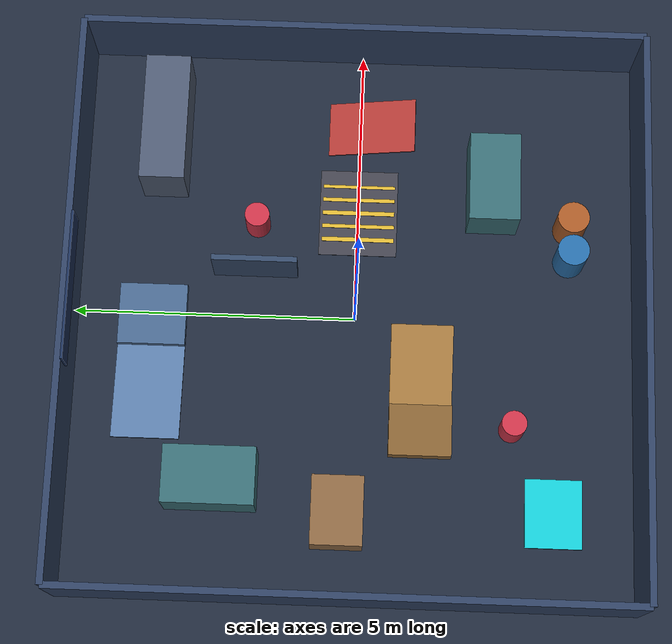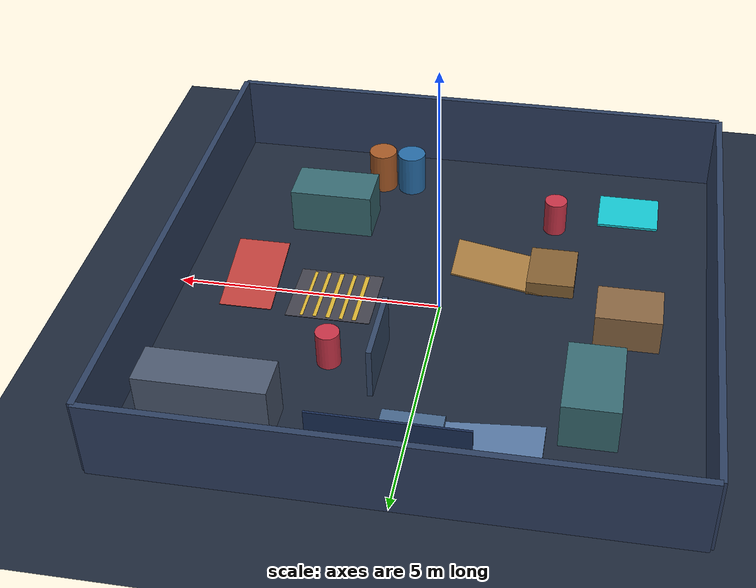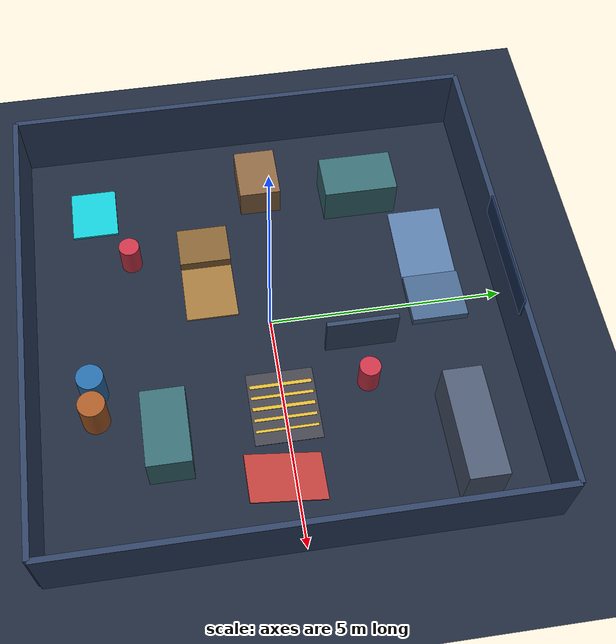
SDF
<sdf version="1.9">
 <world name="amr_lab">
  <plugin filename="gz-sim-physics-system" name="gz::sim::systems::Physics"/>
  <plugin filename="gz-sim-user-commands-system" name="gz::sim::systems::UserCommands"/>
  <plugin filename="gz-sim-scene-broadcaster-system" name="gz::sim::systems::SceneBroadcaster"/>
  <plugin filename="gz-sim-sensors-system" name="gz::sim::systems::Sensors">
   <render_engine>ogre2</render_engine>
  </plugin>
  <plugin filename="gz-sim-imu-system" name="gz::sim::systems::Imu"/>
  <gravity>0 0 -9.81</gravity>
  <physics name="accurate_omni_physics" type="ode">
   <max_step_size>0.001</max_step_size>
   <real_time_factor>1.0</real_time_factor>
   <real_time_update_rate>1000</real_time_update_rate>
  </physics>
  <scene>
   <ambient>0.28 0.32 0.40 1</ambient>
   <background>0.055 0.075 0.12 1</background>
   <shadows>true</shadows>
   <grid>false</grid>
  </scene>
  <light name="key_light" type="directional">
   <pose>4 -5 8 0.35 -0.55 0.45</pose>
   <direction>-0.35 0.45 -0.82</direction>
   <diffuse>0.92 0.95 1.0 1</diffuse>
   <specular>0.45 0.48 0.55 1</specular>
   <attenuation><range>30</range></attenuation>
  </light>
  <light name="fill_light" type="point">
   <pose>-3 2 4 0 0 0</pose>
   <diffuse>0.24 0.38 0.75 1</diffuse>
   <specular>0.10 0.16 0.35 1</specular>
   <attenuation><range>12</range><linear>0.08</linear><constant>0.7</constant></attenuation>
   <cast_shadows>false</cast_shadows>
  </light>
  <model name="lab_floor">
   <static>true</static>
   <link name="link">
    <collision name="collision">
     <geometry><plane><normal>0 0 1</normal><size>20 16</size></plane></geometry>
     <surface><friction><ode><mu>1.0</mu><mu2>1.0</mu2></ode></friction></surface>
    </collision>
    <visual name="visual">
     <geometry><plane><normal>0 0 1</normal><size>20 16</size></plane></geometry>
     <material>
      <ambient>0.08 0.11 0.17 1</ambient>
      <diffuse>0.12 0.16 0.23 1</diffuse>
      <specular>0.18 0.22 0.30 1</specular>
     </material>
    </visual>
   </link>
  </model>
  <model name="north_wall">
   <static>true</static>
   <pose>0 5 0.75 0 0 0</pose>
   <link name="link">
    <collision name="collision"><geometry><box><size>10 0.12 1.5</size></box></geometry></collision>
    <visual name="visual">
     <geometry><box><size>10 0.12 1.5</size></box></geometry>
     <material><ambient>0.12 0.16 0.25 1</ambient><diffuse>0.18 0.25 0.38 1</diffuse></material>
    </visual>
   </link>
  </model>
  <model name="south_wall">
   <static>true</static>
   <pose>0 -5 0.75 0 0 0</pose>
   <link name="link">
    <collision name="collision"><geometry><box><size>10 0.12 1.5</size></box></geometry></collision>
    <visual name="visual">
     <geometry><box><size>10 0.12 1.5</size></box></geometry>
     <material><ambient>0.12 0.16 0.25 1</ambient><diffuse>0.18 0.25 0.38 1</diffuse></material>
    </visual>
   </link>
  </model>
  <model name="east_wall">
   <static>true</static>
   <pose>5 0 0.75 0 0 0</pose>
   <link name="link">
    <collision name="collision"><geometry><box><size>0.12 10 1.5</size></box></geometry></collision>
    <visual name="visual">
     <geometry><box><size>0.12 10 1.5</size></box></geometry>
     <material><ambient>0.12 0.16 0.25 1</ambient><diffuse>0.18 0.25 0.38 1</diffuse></material>
    </visual>
   </link>
  </model>
  <model name="west_wall">
   <static>true</static>
   <pose>-5 0 0.75 0 0 0</pose>
   <link name="link">
    <collision name="collision"><geometry><box><size>0.12 10 1.5</size></box></geometry></collision>
    <visual name="visual">
     <geometry><box><size>0.12 10 1.5</size></box></geometry>
     <material><ambient>0.12 0.16 0.25 1</ambient><diffuse>0.18 0.25 0.38 1</diffuse></material>
    </visual>
   </link>
  </model>
  <model name="workbench">
   <static>true</static>
   <pose>3.35 3.5 0.55 0 0 0</pose>
   <link name="link">
    <collision name="collision"><geometry><box><size>2.3 0.8 1.1</size></box></geometry></collision>
    <visual name="visual">
     <geometry><box><size>2.3 0.8 1.1</size></box></geometry>
     <material><ambient>0.20 0.23 0.29 1</ambient><diffuse>0.30 0.35 0.44 1</diffuse></material>
    </visual>
   </link>
  </model>
  <model name="island_a">
   <static>true</static>
   <pose>-3.0 2.4 0.45 0 0 0</pose>
   <link name="link">
    <collision name="collision"><geometry><box><size>1.0 1.6 0.9</size></box></geometry></collision>
    <visual name="visual">
     <geometry><box><size>1.0 1.6 0.9</size></box></geometry>
     <material><ambient>0.16 0.25 0.28 1</ambient><diffuse>0.22 0.42 0.45 1</diffuse></material>
    </visual>
   </link>
  </model>
  <model name="island_b">
   <static>true</static>
   <pose>2.5 -2.4 0.45 0 0 0</pose>
   <link name="link">
    <collision name="collision"><geometry><box><size>1.6 0.9 0.9</size></box></geometry></collision>
    <visual name="visual">
     <geometry><box><size>1.6 0.9 0.9</size></box></geometry>
     <material><ambient>0.16 0.25 0.28 1</ambient><diffuse>0.22 0.42 0.45 1</diffuse></material>
    </visual>
   </link>
  </model>
  <model name="inspection_pillar_a">
   <static>true</static>
   <pose>-1.9 -2.8 0.35 0 0 0</pose>
   <link name="link">
    <collision name="collision">
     <geometry><cylinder><radius>0.22</radius><length>0.7</length></cylinder></geometry>
    </collision>
    <visual name="visual">
     <geometry><cylinder><radius>0.22</radius><length>0.7</length></cylinder></geometry>
     <material><ambient>0.48 0.12 0.18 1</ambient><diffuse>0.78 0.20 0.28 1</diffuse></material>
    </visual>
   </link>
  </model>
  <model name="inspection_pillar_b">
   <static>true</static>
   <pose>1.7 1.8 0.35 0 0 0</pose>
   <link name="link">
    <collision name="collision">
     <geometry><cylinder><radius>0.22</radius><length>0.7</length></cylinder></geometry>
    </collision>
    <visual name="visual">
     <geometry><cylinder><radius>0.22</radius><length>0.7</length></cylinder></geometry>
     <material><ambient>0.48 0.12 0.18 1</ambient><diffuse>0.78 0.20 0.28 1</diffuse></material>
    </visual>
   </link>
  </model>
  <model name="charging_pad">
   <static>true</static>
   <pose>-3.35 -3.55 0.025 0 0 0</pose>
   <link name="link">
    <collision name="collision"><geometry><box><size>1.2 1.0 0.05</size></box></geometry></collision>
    <visual name="visual">
     <geometry><box><size>1.2 1.0 0.05</size></box></geometry>
     <material>
      <ambient>0.05 0.45 0.52 1</ambient>
      <diffuse>0.08 0.78 0.82 1</diffuse>
      <specular>0.35 0.65 0.7 1</specular>
     </material>
    </visual>
   </link>
  </model>
  <model name="ramp_gentle_5deg">
   <static>true</static>
   <pose>-1.2 3.6 0.09 0 0.0873 0</pose>
   <link name="link">
    <collision name="collision">
     <geometry><box><size>2.2 1.2 0.03</size></box></geometry>
     <surface><friction><ode><mu>1.0</mu><mu2>1.0</mu2></ode></friction></surface>
    </collision>
    <visual name="visual">
     <geometry><box><size>2.2 1.2 0.03</size></box></geometry>
     <material><ambient>0.25 0.32 0.42 1</ambient><diffuse>0.35 0.48 0.65 1</diffuse></material>
    </visual>
   </link>
  </model>
  <model name="ramp_gentle_platform">
   <static>true</static>
   <pose>-0.05 3.6 0.09 0 0 0</pose>
   <link name="link">
    <collision name="collision">
     <geometry><box><size>1.1 1.2 0.18</size></box></geometry>
     <surface><friction><ode><mu>1.0</mu><mu2>1.0</mu2></ode></friction></surface>
    </collision>
    <visual name="visual">
     <geometry><box><size>1.1 1.2 0.18</size></box></geometry>
     <material><ambient>0.20 0.28 0.38 1</ambient><diffuse>0.28 0.40 0.55 1</diffuse></material>
    </visual>
   </link>
  </model>
  <model name="ramp_moderate_10deg">
   <static>true</static>
   <pose>-1.0 -1.2 0.14 0 -0.1745 0</pose>
   <link name="link">
    <collision name="collision">
     <geometry><box><size>1.8 1.1 0.03</size></box></geometry>
     <surface><friction><ode><mu>1.0</mu><mu2>1.0</mu2></ode></friction></surface>
    </collision>
    <visual name="visual">
     <geometry><box><size>1.8 1.1 0.03</size></box></geometry>
     <material><ambient>0.35 0.28 0.18 1</ambient><diffuse>0.65 0.48 0.25 1</diffuse></material>
    </visual>
   </link>
  </model>
  <model name="ramp_moderate_platform">
   <static>true</static>
   <pose>-2.0 -1.2 0.14 0 0 0</pose>
   <link name="link">
    <collision name="collision">
     <geometry><box><size>0.9 1.1 0.28</size></box></geometry>
     <surface><friction><ode><mu>1.0</mu><mu2>1.0</mu2></ode></friction></surface>
    </collision>
    <visual name="visual">
     <geometry><box><size>0.9 1.1 0.28</size></box></geometry>
     <material><ambient>0.30 0.22 0.14 1</ambient><diffuse>0.52 0.38 0.20 1</diffuse></material>
    </visual>
   </link>
  </model>
  <model name="ramp_steep_14deg">
   <static>true</static>
   <pose>3.6 -0.2 0.18 0 0.2443 1.5708</pose>
   <link name="link">
    <collision name="collision">
     <geometry><box><size>1.6 1.0 0.03</size></box></geometry>
     <surface><friction><ode><mu>1.0</mu><mu2>1.0</mu2></ode></friction></surface>
    </collision>
    <visual name="visual">
     <geometry><box><size>1.6 1.0 0.03</size></box></geometry>
     <material><ambient>0.42 0.15 0.15 1</ambient><diffuse>0.72 0.24 0.22 1</diffuse></material>
    </visual>
   </link>
  </model>
  <model name="rough_terrain_strip">
   <static>true</static>
   <pose>2.0 0.0 0.005 0 0 0</pose>
   <link name="strip_bed">
    <collision name="bed_col">
     <geometry><box><size>1.6 1.4 0.01</size></box></geometry>
     <surface><friction><ode><mu>0.9</mu><mu2>0.9</mu2></ode></friction></surface>
    </collision>
    <visual name="bed_vis">
     <geometry><box><size>1.6 1.4 0.01</size></box></geometry>
     <material><ambient>0.18 0.18 0.20 1</ambient><diffuse>0.26 0.26 0.30 1</diffuse></material>
    </visual>
   </link>
   <link name="ridge_1">
    <pose>-0.5 0 0.006 0 0 0</pose>
    <collision name="c"><geometry><box><size>0.08 1.3 0.012</size></box></geometry></collision>
    <visual name="v">
     <geometry><box><size>0.08 1.3 0.012</size></box></geometry>
     <material><ambient>0.45 0.38 0.15 1</ambient><diffuse>0.85 0.70 0.20 1</diffuse></material>
    </visual>
   </link>
   <link name="ridge_2">
    <pose>-0.25 0 0.005 0 0 0</pose>
    <collision name="c"><geometry><box><size>0.07 1.3 0.010</size></box></geometry></collision>
    <visual name="v">
     <geometry><box><size>0.07 1.3 0.010</size></box></geometry>
     <material><ambient>0.45 0.38 0.15 1</ambient><diffuse>0.85 0.70 0.20 1</diffuse></material>
    </visual>
   </link>
   <link name="ridge_3">
    <pose>0.0 0 0.006 0 0 0</pose>
    <collision name="c"><geometry><box><size>0.08 1.3 0.012</size></box></geometry></collision>
    <visual name="v">
     <geometry><box><size>0.08 1.3 0.012</size></box></geometry>
     <material><ambient>0.45 0.38 0.15 1</ambient><diffuse>0.85 0.70 0.20 1</diffuse></material>
    </visual>
   </link>
   <link name="ridge_4">
    <pose>0.25 0 0.005 0 0 0</pose>
    <collision name="c"><geometry><box><size>0.07 1.3 0.010</size></box></geometry></collision>
    <visual name="v">
     <geometry><box><size>0.07 1.3 0.010</size></box></geometry>
     <material><ambient>0.45 0.38 0.15 1</ambient><diffuse>0.85 0.70 0.20 1</diffuse></material>
    </visual>
   </link>
   <link name="ridge_5">
    <pose>0.5 0 0.004 0 0 0</pose>
    <collision name="c"><geometry><box><size>0.06 1.3 0.008</size></box></geometry></collision>
    <visual name="v">
     <geometry><box><size>0.06 1.3 0.008</size></box></geometry>
     <material><ambient>0.45 0.38 0.15 1</ambient><diffuse>0.85 0.70 0.20 1</diffuse></material>
    </visual>
   </link>
  </model>
  <model name="pallet_stack">
   <static>true</static>
   <pose>-3.5 0.2 0.35 0 0 0</pose>
   <link name="link">
    <collision name="collision"><geometry><box><size>1.2 0.9 0.7</size></box></geometry></collision>
    <visual name="visual">
     <geometry><box><size>1.2 0.9 0.7</size></box></geometry>
     <material><ambient>0.32 0.24 0.16 1</ambient><diffuse>0.54 0.40 0.26 1</diffuse></material>
    </visual>
   </link>
  </model>
  <model name="industrial_drum_a">
   <static>true</static>
   <pose>1.2 -3.8 0.42 0 0 0</pose>
   <link name="link">
    <collision name="collision">
     <geometry><cylinder><radius>0.28</radius><length>0.84</length></cylinder></geometry>
    </collision>
    <visual name="visual">
     <geometry><cylinder><radius>0.28</radius><length>0.84</length></cylinder></geometry>
     <material><ambient>0.10 0.22 0.35 1</ambient><diffuse>0.15 0.42 0.65 1</diffuse></material>
    </visual>
   </link>
  </model>
  <model name="industrial_drum_b">
   <static>true</static>
   <pose>1.8 -3.8 0.42 0 0 0</pose>
   <link name="link">
    <collision name="collision">
     <geometry><cylinder><radius>0.28</radius><length>0.84</length></cylinder></geometry>
    </collision>
    <visual name="visual">
     <geometry><cylinder><radius>0.28</radius><length>0.84</length></cylinder></geometry>
     <material><ambient>0.35 0.18 0.10 1</ambient><diffuse>0.65 0.35 0.15 1</diffuse></material>
    </visual>
   </link>
  </model>
  <model name="narrow_partition_wall">
   <static>true</static>
   <pose>0.8 1.8 0.5 0 0 0</pose>
   <link name="link">
    <collision name="collision"><geometry><box><size>0.1 1.5 1.0</size></box></geometry></collision>
    <visual name="visual">
     <geometry><box><size>0.1 1.5 1.0</size></box></geometry>
     <material><ambient>0.14 0.18 0.26 1</ambient><diffuse>0.20 0.28 0.40 1</diffuse></material>
    </visual>
   </link>
  </model>
  <model name="lab_sign">
   <static>true</static>
   <pose>0 4.88 1.55 0 0 0</pose>
   <link name="link">
    <visual name="visual">
     <geometry><box><size>2.6 0.04 0.55</size></box></geometry>
     <material><ambient>0.06 0.10 0.20 1</ambient><diffuse>0.10 0.18 0.34 1</diffuse></material>
    </visual>
   </link>
  </model>
 </world>
</sdf>
